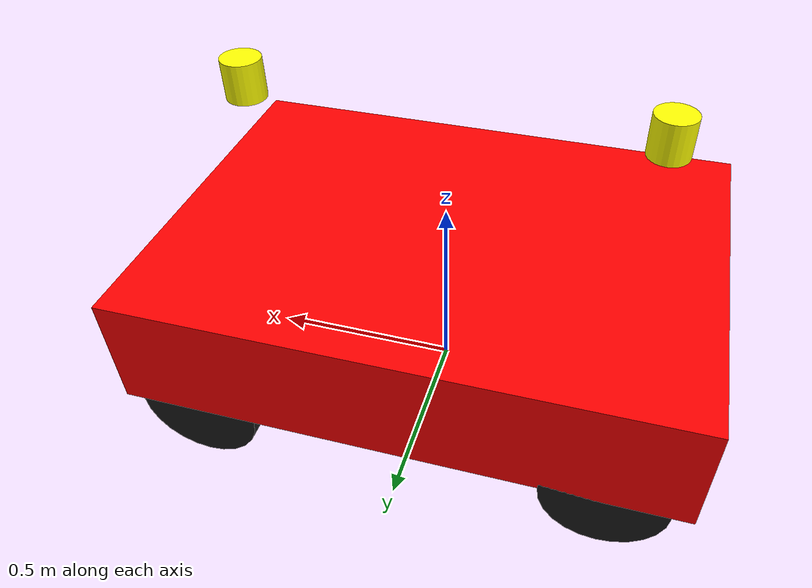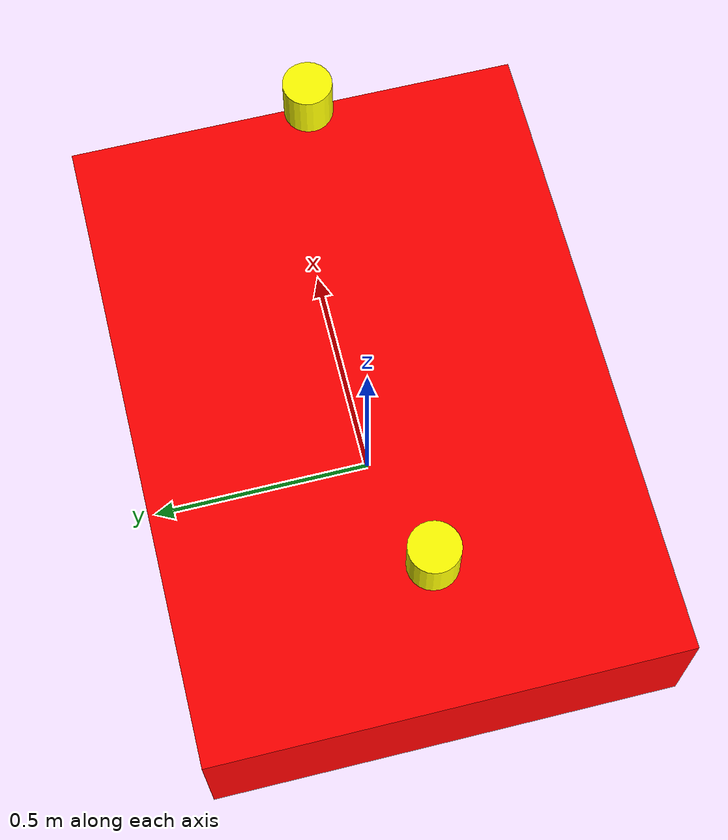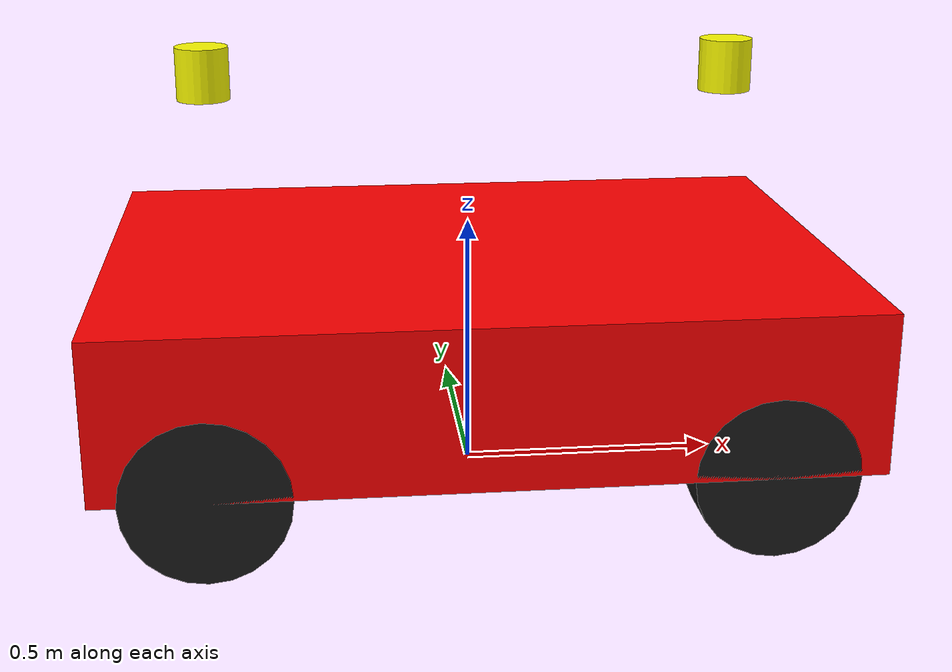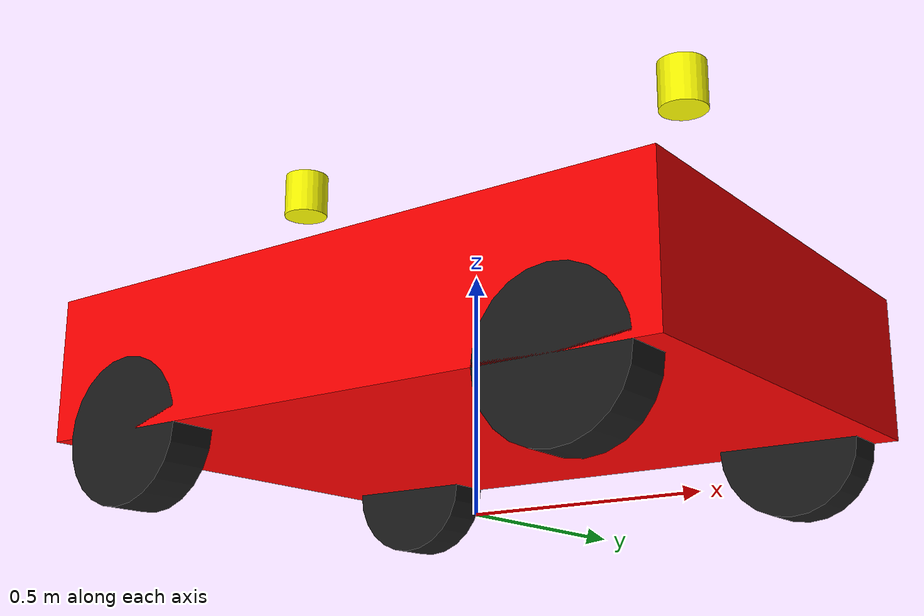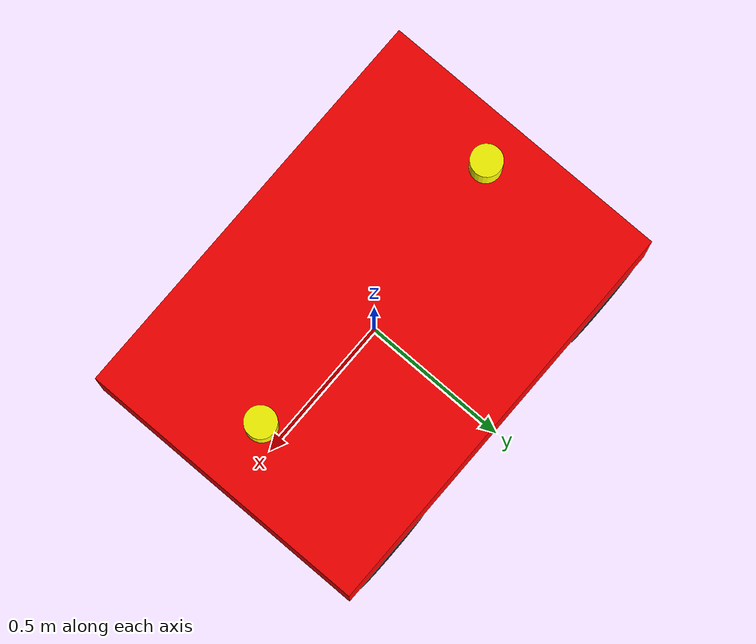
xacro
<?xml version="1.0"?>
<robot name="agv_sim" xmlns:xacro="http://www.ros.org/wiki/xacro">

  <!-- 几何与物理参数定义 -->
  <xacro:property name="wheelbase" value="1.0"/>
  <xacro:property name="track" value="0.9"/>
  <xacro:property name="wheel_radius" value="0.15"/>
  <xacro:property name="wheel_width" value="0.1"/>
  <xacro:property name="base_length" value="1.4"/>
  <xacro:property name="base_width" value="1.0"/>
  <xacro:property name="base_height" value="0.3"/>

  <!-- 材质 -->
  <material name="red"><color rgba="1.0 0.0 0.0 1.0"/></material>
  <material name="black"><color rgba="0.1 0.1 0.1 1.0"/></material>
  <material name="yellow"><color rgba="1.0 1.0 0.0 1.0"/></material>

  <!-- 虚拟根节点 -->
  <link name="base_footprint"/>

  <!-- 车体 -->
  <link name="base_link">
    <visual>
      <geometry><box size="${base_length} ${base_width} ${base_height}"/></geometry>
      <material name="red"/>
    </visual>
    <collision>
      <geometry><box size="${base_length} ${base_width} ${base_height}"/></geometry>
    </collision>
    <inertial>
      <mass value="50.0"/>
      <inertia ixx="3.0" ixy="0" ixz="0" iyy="6.0" iyz="0" izz="8.0"/>
    </inertial>
  </link>

  <joint name="base_joint" type="fixed">
    <parent link="base_footprint"/>
    <child link="base_link"/>
    <origin xyz="0 0 ${wheel_radius + base_height/2}" rpy="0 0 0"/>
  </joint>

  <!-- 车轮宏定义 -->
  <xacro:macro name="wheel_visual" params="name">
    <visual>
      <origin xyz="0 0 0" rpy="1.5708 0 0"/>
      <geometry><cylinder radius="${wheel_radius}" length="${wheel_width}"/></geometry>
      <material name="black"/>
    </visual>
    <collision>
      <origin xyz="0 0 0" rpy="1.5708 0 0"/>
      <geometry><cylinder radius="${wheel_radius}" length="${wheel_width}"/></geometry>
    </collision>
    <inertial>
      <mass value="5.0"/>
      <inertia ixx="0.1" ixy="0" ixz="0" iyy="0.1" iyz="0" izz="0.1"/>
    </inertial>
  </xacro:macro>

  <!-- 1. 左前轮 -->
  <link name="front_left_wheel"><xacro:wheel_visual name="front_left_wheel"/></link>
  <joint name="front_left_wheel_joint" type="continuous">
    <parent link="base_link"/><child link="front_left_wheel"/>
    <origin xyz="${wheelbase/2} ${track/2} ${-base_height/2}" rpy="0 0 0"/>
    <axis xyz="0 1 0"/>
  </joint>

  <!-- 2. 右前轮 -->
  <link name="front_right_wheel"><xacro:wheel_visual name="front_right_wheel"/></link>
  <joint name="front_right_wheel_joint" type="continuous">
    <parent link="base_link"/><child link="front_right_wheel"/>
    <origin xyz="${wheelbase/2} ${-track/2} ${-base_height/2}" rpy="0 0 0"/>
    <axis xyz="0 1 0"/>
  </joint>

  <!-- 3. 左后轮 (驱动轮) -->
  <link name="rear_left_wheel"><xacro:wheel_visual name="rear_left_wheel"/></link>
  <joint name="rear_left_wheel_joint" type="continuous">
    <parent link="base_link"/><child link="rear_left_wheel"/>
    <origin xyz="${-wheelbase/2} ${track/2} ${-base_height/2}" rpy="0 0 0"/>
    <axis xyz="0 1 0"/>
  </joint>

  <!-- 4. 右后轮 (驱动轮) -->
  <link name="rear_right_wheel"><xacro:wheel_visual name="rear_right_wheel"/></link>
  <joint name="rear_right_wheel_joint" type="continuous">
    <parent link="base_link"/><child link="rear_right_wheel"/>
    <origin xyz="${-wheelbase/2} ${-track/2} ${-base_height/2}" rpy="0 0 0"/>
    <axis xyz="0 1 0"/>
  </joint>

  <!-- 激光雷达 -->
    <!-- ==================== 双雷达模型 ==================== -->
  <!-- 左雷达 -->
  <link name="lidar_left">
    <visual><geometry><cylinder radius="0.05" length="0.1"/></geometry><material name="yellow"/></visual>
    <inertial><mass value="0.5"/><inertia ixx="0.01" ixy="0" ixz="0" iyy="0.01" iyz="0" izz="0.01"/></inertial>
  </link>
  <joint name="lidar_left_joint" type="fixed">
    <parent link="base_link"/><child link="lidar_left"/>
    <origin xyz="0.5 0 0.5" rpy="0 0 0"/>
  </joint>

  <!-- 右雷达 -->
  <link name="lidar_right">
    <visual><geometry><cylinder radius="0.05" length="0.1"/></geometry><material name="yellow"/></visual>
    <inertial><mass value="0.5"/><inertia ixx="0.01" ixy="0" ixz="0" iyy="0.01" iyz="0" izz="0.01"/></inertial>
  </link>
  <joint name="lidar_right_joint" type="fixed">
    <parent link="base_link"/><child link="lidar_right"/>
    <origin xyz="-0.5 0 0.5" rpy="0 0 0"/>
  </joint>

  <!-- ==================== Gazebo 专属配置区 ==================== -->

  <gazebo reference="base_link"><material>Gazebo/Red</material></gazebo>
  <gazebo reference="lidar_link"><material>Gazebo/Yellow</material></gazebo>
  <gazebo reference="front_left_wheel"><material>Gazebo/Black</material></gazebo>
  <gazebo reference="front_right_wheel"><material>Gazebo/Black</material></gazebo>
  <gazebo reference="rear_left_wheel"><material>Gazebo/Black</material></gazebo>
  <gazebo reference="rear_right_wheel"><material>Gazebo/Black</material></gazebo>

  <!-- 关键：前轮摩擦力设为0，模拟万向轮，允许转弯 -->
  <gazebo reference="front_left_wheel"><mu1>0.0</mu1><mu2>0.0</mu2></gazebo>
  <gazebo reference="front_right_wheel"><mu1>0.0</mu1><mu2>0.0</mu2></gazebo>

  <!-- 后轮增加抓地力 -->
  <gazebo reference="rear_left_wheel"><mu1>1.0</mu1><mu2>1.0</mu2></gazebo>
  <gazebo reference="rear_right_wheel"><mu1>1.0</mu1><mu2>1.0</mu2></gazebo>

  <!-- 差速驱动插件 -->
  <gazebo>
    <plugin name="diff_drive" filename="libgazebo_ros_diff_drive.so">
      <updateRate>50.0</updateRate>
      <leftJoint>rear_left_wheel_joint</leftJoint>
      <rightJoint>rear_right_wheel_joint</rightJoint>
      <wheelSeparation>${track}</wheelSeparation>
      <wheelDiameter>${wheel_radius * 2}</wheelDiameter>
      <torque>20</torque>
      <commandTopic>cmd_vel</commandTopic>
      <odometryTopic>odom</odometryTopic>
      <odometryFrame>odom</odometryFrame>
      <robotBaseFrame>base_footprint</robotBaseFrame>
      <publishWheelTF>true</publishWheelTF>
      <publishOdomTF>true</publishOdomTF>
      <publishWheelJointState>true</publishWheelJointState>
      <legacyMode>false</legacyMode>
    </plugin>
  </gazebo>

  <!-- 激光雷达插件 -->
  <!-- 绝对稳妥的官方 2D 雷达插件 -->
    <!-- 左侧雷达插件，输出到 /scan_left -->
  <gazebo reference="lidar_left">
    <sensor type="ray" name="lidar_sensor_left">
      <visualize>false</visualize>
      <update_rate>10</update_rate>
      <ray>
        <scan><horizontal><samples>360</samples><min_angle>-3.14159</min_angle><max_angle>3.14159</max_angle></horizontal></scan>
        <range><min>0.3</min><max>30.0</max></range>
      </ray>
      <plugin name="gazebo_ros_laser_left" filename="libgazebo_ros_laser.so">
        <topicName>/scan_left</topicName>
        <frameName>lidar_left</frameName>
      </plugin>
    </sensor>
  </gazebo>

  <!-- 右侧雷达插件，输出到 /scan_right -->
  <gazebo reference="lidar_right">
    <sensor type="ray" name="lidar_sensor_right">
      <visualize>false</visualize>
      <update_rate>10</update_rate>
      <ray>
        <scan><horizontal><samples>360</samples><min_angle>-3.14159</min_angle><max_angle>3.14159</max_angle></horizontal></scan>
        <range><min>0.3</min><max>30.0</max></range>
      </ray>
      <plugin name="gazebo_ros_laser_right" filename="libgazebo_ros_laser.so">
        <topicName>/scan_right</topicName>
        <frameName>lidar_right</frameName>
      </plugin>
    </sensor>
  </gazebo>
</robot>
